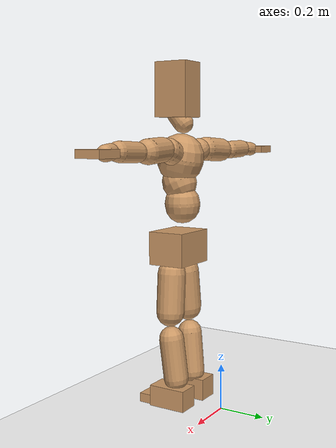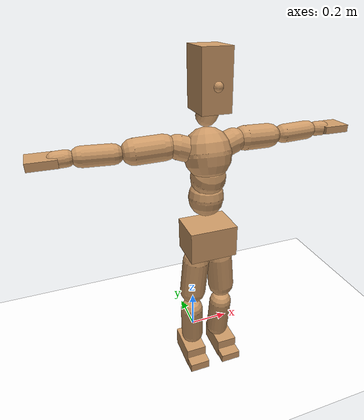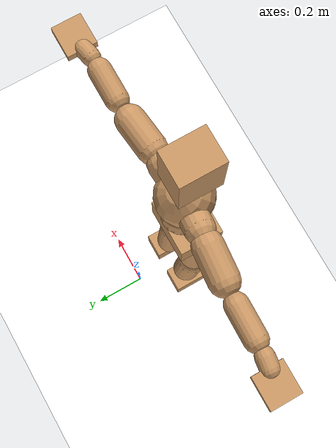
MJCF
<mujoco model="humanoid">
  <option integrator="implicitfast" />

  <visual>
    <global offwidth="1280" offheight="960" />
    <headlight active="1" ambient="0.34 0.34 0.34" diffuse="0.5 0.5 0.5" />
  </visual>

  <default>
    <joint damping="2" stiffness="2" armature="0.01" limited="true" solimplimit="0 .99 .01" />
    <geom condim="1" friction="0.7 0.005 0.0001" solimp=".99 .99 .003" solref="0.015 1" margin="0.001" rgba="0.8 0.6 .4 1" />
    <default class="smplcontact">
      <geom condim="3" friction="1. 0.005 0.0001" solref="0.015 1" solimp="0.98 0.98 0.001" priority="1" />
    </default>
    <default class="stiff_medium">
      <joint stiffness="10" />
    </default>
    <default class="stiff_medium_higher">
      <joint stiffness="50" />
    </default>
    <default class="stiff_high">
      <joint stiffness="100" />
    </default>
  </default>

  <asset>
    <texture type="skybox" builtin="gradient" rgb1="0.99 0.99 0.99" rgb2="0.608 0.828 0.892" width="100" />
    <texture builtin="flat" height="1278" mark="cross" markrgb="1 1 1" name="texgeom" random="0.01" rgb1="0.8 0.6 0.4" rgb2="0.8 0.6 0.4" type="cube" width="127" />
    <texture name="texplane" type="2d" builtin="checker" markrgb="1 1 1" rgb1="0.756 0.772 0.76" rgb2="0.6 0.6 0.6" width="100" height="100" />
    <material name="MatPlane" reflectance="0.5" texture="texplane" texrepeat="1 1" texuniform="true" />
    <material name="geom" texture="texgeom" texuniform="true" />
  </asset>

  <worldbody>
    <light name="tracking_light" pos="0 0 7" dir="0 0 -1" directional="true" cutoff="100" exponent="1" diffuse="1 1 1" specular="0.1 0.1 0.1" mode="trackcom" />
    <camera name="back" pos="0 3 2.4" xyaxes="-1 0 0 0 -1 2" mode="trackcom" />
    <camera name="side" pos="-3 0 2.4" xyaxes="0 -1 0 1 0 2" mode="trackcom" />
    <camera name="front_side" pos="-2.8 -2.8 0.8" xyaxes="0.5 -0.5 0 0.1 0.1 1" mode="trackcom" />
    <geom condim="3" name="floor" pos="0 0 0" rgba="1 1 1 1" size="100 100 .2" type="plane" material="MatPlane" />
    <body name="Pelvis" pos="-0.0018 -0.2233 0.714475" euler="90 0 0">
      <site name="Pelvis" size="0.01" />
      <freejoint name="Pelvis" />
      <geom type="box" pos="-0.0000 -0.0121 -0.0055" size="0.1069 0.0722 0.083" quat="1.0000 0.0000 0.0000 0.0000" density="3165.830099" name="Pelvis" />
      <body name="L_Hip" pos="0.052125 -0.06855 -0.0051">
        <joint name="L_Hip_x" type="hinge" pos="0 0 0" axis="1 0 0" stiffness="6.246094795918367" range="-160.0 22.92" class="stiff_medium" damping="8.291075045961076" armature="0.004891370984683403"/>
        <joint name="L_Hip_y" type="hinge" pos="0 0 0" axis="0 1 0" stiffness="6.283432346938776" range="-70.0 70.0" class="stiff_medium" damping="6.622206330553066" armature="0.006979245460609145"/>
        <joint name="L_Hip_z" type="hinge" pos="0 0 0" axis="0 0 1" stiffness="6.280236020408163" range="-28.65 90.0" class="stiff_medium" damping="5.540637852842338" armature="0.004888139190404853"/>
        <geom type="capsule" density="2040.816327" fromto="0.005175 -0.05625 -0.000675 0.02055 -0.22515 -0.0027" size="0.0615" name="L_Hip" />
        <body name="L_Knee" pos="0.025725 -0.2814 -0.003375">
          <joint name="L_Knee_x" type="hinge" pos="0 0 0" axis="1 0 0" range="-5.16 171.89" damping="4.62915338976834" armature="0.005182973512521489" stiffness="1.292034693877551"/>
          <joint name="L_Knee_y" type="hinge" pos="0 0 0" axis="0 1 0" range="-4.58 6.88" damping="5.469884734588187" armature="0.007381715461698134" stiffness="1.2666279591836735"/>
          <joint name="L_Knee_z" type="hinge" pos="0 0 0" axis="0 0 1" range="-6.88 4.58" damping="4.641672627872137" armature="0.005166231774225991" stiffness="1.3032422448979593"/>
          <geom type="capsule" density="1234.567901" fromto="-0.002025 -0.0597 -0.006525 -0.008175 -0.2388 -0.02625" size="0.0541" name="L_Knee" />
          <body name="L_Ankle" pos="-0.0102 -0.2985 -0.032775">
            <joint name="L_Ankle_x" type="hinge" pos="0 0 0" axis="1 0 0" range="-45.84 45.84" class="stiff_medium" damping="4.385268345779526" armature="0.007122436468331814" stiffness="7.5"/>
            <joint name="L_Ankle_y" type="hinge" pos="0 0 0" axis="0 1 0" range="-74.48 22.92" class="stiff_medium" damping="2.209050591087885" armature="0.007229488168867752" stiffness="7.5"/>
            <joint name="L_Ankle_z" type="hinge" pos="0 0 0" axis="0 0 1" range="-4.58 4.58" class="stiff_medium" damping="4.62729328440739" armature="0.007930312274045085" stiffness="7.5"/>
            <geom type="box" pos="0.017475 -0.017925 0.01815" size="0.0483 0.0464 0.085" quat="1.0000 0.0000 0.0000 0.0000" density="449.071558" name="L_Ankle" class="smplcontact" />
            <body name="L_Toe" pos="0.0198 -0.04185 0.089475">
              <joint name="L_Toe_x" type="hinge" pos="0 0 0" axis="1 0 0" range="-91.67 22.92" armature="0.008336677887503332" damping="1.5814560905225916" stiffness="1.5"/>
              <joint name="L_Toe_y" type="hinge" pos="0 0 0" axis="0 1 0" range="-4.58 4.58" armature="0.008828055290798205" damping="1.6273956455759186" stiffness="1.5"/>
              <joint name="L_Toe_z" type="hinge" pos="0 0 0" axis="0 0 1" range="-4.58 4.58" armature="0.00982159395199221" damping="1.7165308577470035" stiffness="1.5"/>
              <geom type="box" pos="-0.00225 0.004125 0.0186" size="0.0478 0.02 0.0496" quat="1.0000 0.0000 0.0000 0.0000" density="423.206892" name="L_Toe" class="smplcontact" />
            </body>
          </body>
        </body>
      </body>
      <body name="R_Hip" pos="-0.050775 -0.067875 -0.003225">
        <joint name="R_Hip_x" type="hinge" pos="0 0 0" axis="1 0 0" stiffness="6.246094795918367" range="-160.0 22.92" class="stiff_medium" damping="8.291075045961076" armature="0.004891370984683403"/>
        <joint name="R_Hip_y" type="hinge" pos="0 0 0" axis="0 1 0" stiffness="6.283432346938776" range="-70.0 70.0" class="stiff_medium" damping="6.622206330553066" armature="0.006979245460609145"/>
        <joint name="R_Hip_z" type="hinge" pos="0 0 0" axis="0 0 1" stiffness="6.280236020408163" range="-90.0 28.65" class="stiff_medium" damping="5.540637852842338" armature="0.004888139190404853"/>
        <geom type="capsule" density="2040.816327" fromto="-0.005775 -0.057375 -0.00135 -0.02295 -0.229575 -0.005325" size="0.0606" name="R_Hip" />
        <body name="R_Knee" pos="-0.028725 -0.28695 -0.006675">
          <joint name="R_Knee_x" type="hinge" pos="0 0 0" axis="1 0 0" range="-5.16 171.89" damping="4.62915338976834" armature="0.005182973512521489" stiffness="1.292034693877551"/>
          <joint name="R_Knee_y" type="hinge" pos="0 0 0" axis="0 1 0" range="-6.88 4.58" damping="5.469884734588187" armature="0.007381715461698134" stiffness="1.2666279591836735"/>
          <joint name="R_Knee_z" type="hinge" pos="0 0 0" axis="0 0 1" range="-4.58 6.88" damping="4.641672627872137" armature="0.005166231774225991" stiffness="1.3032422448979593"/>
          <geom type="capsule" density="1234.567901" fromto="0.0024 -0.059775 -0.006375 0.00945 -0.239025 -0.02535" size="0.0541" name="R_Knee" />
          <body name="R_Ankle" pos="0.01185 -0.2988 -0.031725">
            <joint name="R_Ankle_x" type="hinge" pos="0 0 0" axis="1 0 0" range="-45.84 45.84" class="stiff_medium" damping="4.385268345779526" armature="0.007122436468331814" stiffness="7.5"/>
            <joint name="R_Ankle_y" type="hinge" pos="0 0 0" axis="0 1 0" range="-22.92 74.48" class="stiff_medium" damping="2.209050591087885" armature="0.007229488168867752" stiffness="7.5"/>
            <joint name="R_Ankle_z" type="hinge" pos="0 0 0" axis="0 0 1" range="-4.58 4.58" class="stiff_medium" damping="4.62729328440739" armature="0.007930312274045085" stiffness="7.5"/>
            <geom type="box" pos="-0.0159 -0.01305 0.0192" size="0.0483 0.0478 0.0865" quat="1.0000 0.0000 0.0000 0.0000" density="434.700981" name="R_Ankle" class="smplcontact" />
            <body name="R_Toe" pos="-0.01905 -0.036075 0.092475">
              <joint name="R_Toe_x" type="hinge" pos="0 0 0" axis="1 0 0" range="-91.67 22.92" armature="0.008336677887503332" damping="1.5814560905225916" stiffness="1.5"/>
              <joint name="R_Toe_y" type="hinge" pos="0 0 0" axis="0 1 0" range="-4.58 4.58" armature="0.008828055290798205" damping="1.6273956455759186" stiffness="1.5"/>
              <joint name="R_Toe_z" type="hinge" pos="0 0 0" axis="0 0 1" range="-4.58 4.58" armature="0.00982159395199221" damping="1.7165308577470035" stiffness="1.5"/>
              <geom type="box" pos="0.00315 0.003375 0.017025" size="0.0479 0.0216 0.0493" quat="1.0000 0.0000 0.0000 0.0000" density="407.384095" name="R_Toe" class="smplcontact" />
            </body>
          </body>
        </body>
      </body>
      <body name="Torso" pos="-0.0025 0.109 -0.0267">
        <joint name="Torso_x" type="hinge" pos="0 0 0" axis="1 0 0" range="-25.78 57.3" class="stiff_medium" damping="13.810652204593472" armature="0.009092501018959226" stiffness="9.323146326530612"/>
        <joint name="Torso_y" type="hinge" pos="0 0 0" axis="0 1 0" range="-57.3 57.3" class="stiff_high" damping="14.331171543099826" armature="0.005453647751768046" stiffness="94.1491306122449"/>
        <joint name="Torso_z" type="hinge" pos="0 0 0" axis="0 0 1" range="-34.38 34.38" class="stiff_high" damping="17.298336416757877" armature="0.007846444358372213" stiffness="95.34014042553191"/>
        <geom type="capsule" density="2040.816327" fromto="0.0025 0.0608 0.0005 0.003 0.0743 0.0006" size="0.0769" name="Torso" />
        <body name="Spine" pos="0.0055 0.1352 0.0011">
          <joint name="Spine_x" type="hinge" pos="0 0 0" axis="1 0 0" stiffness="9.198122653061224" range="-25.78 57.3" class="stiff_medium" damping="13.625447932409392" armature="0.008970566343267754"/>
          <joint name="Spine_y" type="hinge" pos="0 0 0" axis="0 1 0" stiffness="9.181372040816328" range="-57.3 57.3" class="stiff_high" damping="5.644321396937274" armature="0.005421705337566875"/>
          <joint name="Spine_z" type="hinge" pos="0 0 0" axis="0 0 1" stiffness="18.1392375" range="-34.38 34.38" class="stiff_high" damping="9.55999432042161" armature="0.006997835754189828"/>
          <geom type="capsule" density="2040.816327" fromto="0.0007 0.0238 0.0114 0.0008 0.0291 0.014" size="0.0755" name="Spine" />
          <body name="Chest" pos="0.0015 0.0529 0.0254">
            <joint name="Chest_x" type="hinge" pos="0 0 0" axis="1 0 0" stiffness="8.90027425531915" range="-25.78 57.3" class="stiff_medium" damping="13.35613299120066" armature="0.008907904701027891"/>
            <joint name="Chest_y" type="hinge" pos="0 0 0" axis="0 1 0" stiffness="8.011889047619047" range="-57.3 57.3" class="stiff_high" damping="5.266225064762502" armature="0.005408588385784329"/>
            <joint name="Chest_z" type="hinge" pos="0 0 0" axis="0 0 1" stiffness="18.1318547826087" range="-34.38 34.38" class="stiff_high" damping="9.302458057933912" armature="0.006628583212401057"/>
            <geom type="capsule" density="2040.816327" fromto="-0.0009 0.0682 -0.0173 -0.001 0.0833 -0.0212" size="0.1002" name="Chest" />
            <body name="Neck" pos="-0.0028 0.2139 -0.0429">
              <joint name="Neck_x" type="hinge" pos="0 0 0" axis="1 0 0" range="-28.65 57.3" class="stiff_medium_higher" damping="10.000000000000004" armature="0.01000000000000001" stiffness="50.0"/>
              <joint name="Neck_y" type="hinge" pos="0 0 0" axis="0 1 0" range="-40.11 40.11" class="stiff_medium_higher" damping="10.0" armature="0.010000000000000002" stiffness="50.0"/>
              <joint name="Neck_z" type="hinge" pos="0 0 0" axis="0 0 1" range="-40.11 40.11" class="stiff_medium_higher" damping="9.999999999999998" armature="0.009999999999999995" stiffness="50.0"/>
              <geom type="capsule" density="1000" fromto="0.001 0.013 0.0103 0.0041 0.052 0.0411" size="0.0436" name="Neck" />
              <body name="Head" pos="0.0052 0.065 0.0513">
                <joint name="Head_x" type="hinge" pos="0 0 0" axis="1 0 0" range="-28.65 57.3" class="stiff_medium_higher" damping="1.9999999999999978" armature="0.009999999999999978" stiffness="50.0"/>
                <joint name="Head_y" type="hinge" pos="0 0 0" axis="0 1 0" range="-40.11 40.11" class="stiff_medium_higher" damping="2.0" armature="0.010000000000000002" stiffness="50.0"/>
                <joint name="Head_z" type="hinge" pos="0 0 0" axis="0 0 1" range="-40.11 40.11" class="stiff_medium_higher" damping="1.9999999999999958" armature="0.009999999999999959" stiffness="50.0"/>
                <geom type="box" pos="-0.0042 0.0876 -0.0116" size="0.0606 0.1154 0.076" quat="1.0000 0.0000 0.0000 0.0000" density="1018.069894" name="Head" />
                <geom type="capsule" name="nose" size="0.02 0.01" pos="0 0.07 0.05" quat="1 0 0 0" mass="0" contype="0" conaffinity="0" />
              </body>
            </body>
            <body name="L_Thorax" pos="0.06107 0.0943175 -0.0264275">
              <joint name="L_Thorax_x" type="hinge" pos="0 0 0" axis="1 0 0" range="-10.89 4.58" class="stiff_medium_higher" damping="13.43087791250666" armature="0.006743873105350322" stiffness="33.43562346938776"/>
              <joint name="L_Thorax_y" type="hinge" pos="0 0 0" axis="0 1 0" range="-28.65 17.19" class="stiff_medium_higher" damping="11.843958709758661" armature="0.005279455483598095" stiffness="33.21350051020408"/>
              <joint name="L_Thorax_z" type="hinge" pos="0 0 0" axis="0 0 1" range="-31.51 40.11" class="stiff_medium_higher" damping="11.84290484733603" armature="0.005278125365951002" stiffness="33.215958673469395"/>
              <geom type="capsule" density="1000" fromto="0.014105 0.0047275 -0.001395 0.05642 0.01891 -0.0055025" size="0.0521" name="L_Thorax" />
              <body name="L_Shoulder" pos="0.070525 0.0236375 -0.0068975">
                <joint name="L_Shoulder_x" type="hinge" pos="0 0 0" axis="1 0 0" range="-97.4 97.4" class="stiff_medium" damping="4.200573869623511" armature="0.007293874713182502" stiffness="6.719801632653062"/>
                <joint name="L_Shoulder_y" type="hinge" pos="0 0 0" axis="0 1 0" range="-108.86 80.21" class="stiff_medium" damping="3.5719924695592944" armature="0.005322246430600954" stiffness="6.659223469387755"/>
                <joint name="L_Shoulder_z" type="hinge" pos="0 0 0" axis="0 0 1" range="-97.4 85.94" class="stiff_medium" damping="3.5723414695273763" armature="0.0053204314495063935" stiffness="6.662796938775511"/>
                <geom type="capsule" density="1000" fromto="0.0402225 -0.002015 -0.0042625 0.160968 -0.007905 -0.01705" size="0.0517" name="L_Shoulder" />
                <body name="L_Elbow" pos="0.20119 -0.00992 -0.0213125">
                  <joint name="L_Elbow_x" type="hinge" pos="0 0 0" axis="1 0 0" range="-17.19 4.58" damping="3.751209439001512" armature="0.00822171344580518" stiffness="1.3692106734693876"/>
                  <joint name="L_Elbow_y" type="hinge" pos="0 0 0" axis="0 1 0" range="-180.0 17.19" damping="3.0766314110203536" armature="0.005532912421377136" stiffness="1.368633387755102"/>
                  <joint name="L_Elbow_z" type="hinge" pos="0 0 0" axis="0 0 1" range="-100.84 4.58" damping="3.0750834512185694" armature="0.005523383254833449" stiffness="1.3696153673469391"/>
                  <geom type="capsule" density="1000" fromto="0.038595 0.001395 -0.000155 0.154535 0.00558 -0.0006975" size="0.0405" name="L_Elbow" />
                  <body name="L_Wrist" pos="0.19313 0.006975 -0.00093">
                    <joint name="L_Wrist_x" type="hinge" pos="0 0 0" axis="1 0 0" range="-180.0 22.92" armature="0.008602907880090325" damping="1.5994571311849208" stiffness="1.486859530612245"/>
                    <joint name="L_Wrist_y" type="hinge" pos="0 0 0" axis="0 1 0" range="-17.19 17.19" armature="0.006335437662014364" damping="1.3682982903238867" stiffness="1.4775934285714285"/>
                    <joint name="L_Wrist_z" type="hinge" pos="0 0 0" axis="0 0 1" range="-22.92 22.92" armature="0.006206199430184646" damping="1.355981958198603" stiffness="1.4813309591836734"/>
                    <geom type="capsule" density="1000" fromto="0.01302 -0.00124 -0.002325 0.05208 -0.0050375 -0.0093" size="0.0318" name="L_Wrist" class="smplcontact" />
                    <body name="L_Hand" pos="0.0651 -0.006355 -0.0115475">
                      <joint name="L_Hand_x" type="hinge" pos="0 0 0" axis="1 0 0" range="-17.19 17.19" armature="0.009826007646420904" damping="1.74529721548809" stiffness="1.55"/>
                      <joint name="L_Hand_y" type="hinge" pos="0 0 0" axis="0 1 0" range="-51.57 51.57" armature="0.007895802531703768" damping="1.5645123153328542" stiffness="1.55"/>
                      <joint name="L_Hand_z" type="hinge" pos="0 0 0" axis="0 0 1" range="-91.67 91.67" armature="0.007381279985826257" damping="1.5126786822078706" stiffness="1.55"/>
                      <geom type="box" pos="0.0382075 0.000775 -0.004495" size="0.0585 0.0158 0.0538" quat="1.0000 0.0000 0.0000 0.0000" density="400.552564" name="L_Hand" class="smplcontact" />
                    </body>
                  </body>
                </body>
              </body>
            </body>
            <body name="R_Thorax" pos="-0.063395 0.09207 -0.029915">
              <joint name="R_Thorax_x" type="hinge" pos="0 0 0" axis="1 0 0" range="-10.89 4.58" class="stiff_medium_higher" damping="13.43087791250666" armature="0.006743873105350322" stiffness="33.43562346938776"/>
              <joint name="R_Thorax_y" type="hinge" pos="0 0 0" axis="0 1 0" range="-17.19 28.65" class="stiff_medium_higher" damping="11.843958709758661" armature="0.005279455483598095" stiffness="33.21350051020408"/>
              <joint name="R_Thorax_z" type="hinge" pos="0 0 0" axis="0 0 1" range="-40.11 31.51" class="stiff_medium_higher" damping="11.84290484733603" armature="0.005278125365951002" stiffness="33.215958673469395"/>
              <geom type="capsule" density="1000" fromto="-0.01488 0.0050375 -0.001395 -0.05952 0.02015 -0.0056575" size="0.0511" name="R_Thorax" />
              <body name="R_Shoulder" pos="-0.0744 0.025265 -0.0070525">
                <joint name="R_Shoulder_x" type="hinge" pos="0 0 0" axis="1 0 0" range="-97.4 97.4" class="stiff_medium" damping="4.200573869623511" armature="0.007293874713182502" stiffness="6.719801632653062"/>
                <joint name="R_Shoulder_y" type="hinge" pos="0 0 0" axis="0 1 0" range="-80.21 108.86" class="stiff_medium" damping="3.5719924695592944" armature="0.005322246430600954" stiffness="6.659223469387755"/>
                <joint name="R_Shoulder_z" type="hinge" pos="0 0 0" axis="0 0 1" range="-85.94 97.4" class="stiff_medium" damping="3.5723414695273763" armature="0.0053204314495063935" stiffness="6.662796938775511"/>
                <geom type="capsule" density="1000" fromto="-0.0392925 -0.0020925 -0.0033325 -0.157325 -0.0082925 -0.0132525" size="0.0531" name="R_Shoulder" />
                <body name="R_Elbow" pos="-0.196618 -0.0103075 -0.016585">
                  <joint name="R_Elbow_x" type="hinge" pos="0 0 0" axis="1 0 0" range="-17.19 4.58" damping="3.751209439001512" armature="0.00822171344580518" stiffness="1.3692106734693876"/>
                  <joint name="R_Elbow_y" type="hinge" pos="0 0 0" axis="0 1 0" range="-17.19 180.0" damping="3.0766314110203536" armature="0.005532912421377136" stiffness="1.368633387755102"/>
                  <joint name="R_Elbow_z" type="hinge" pos="0 0 0" axis="0 0 1" range="-4.58 100.84" damping="3.0750834512185694" armature="0.005523383254833449" stiffness="1.3696153673469391"/>
                  <geom type="capsule" density="1000" fromto="-0.0396025 0.00124 -0.0008525 -0.158255 0.004805 -0.00341" size="0.0408" name="R_Elbow" />
                  <body name="R_Wrist" pos="-0.197858 0.006045 -0.00434">
                    <joint name="R_Wrist_x" type="hinge" pos="0 0 0" axis="1 0 0" range="-180.0 22.92" armature="0.008602907880090325" damping="1.5994571311849208" stiffness="1.486859530612245"/>
                    <joint name="R_Wrist_y" type="hinge" pos="0 0 0" axis="0 1 0" range="-17.19 17.19" armature="0.006335437662014364" damping="1.3682982903238867" stiffness="1.4775934285714285"/>
                    <joint name="R_Wrist_z" type="hinge" pos="0 0 0" axis="0 0 1" range="-22.92 22.92" armature="0.006206199430184646" damping="1.355981958198603" stiffness="1.4813309591836734"/>
                    <geom type="capsule" density="1000" fromto="-0.0130975 -0.00093 -0.0016275 -0.0524675 -0.0037975 -0.0064325" size="0.0326" name="R_Wrist" class="smplcontact" />
                    <body name="R_Hand" pos="-0.065565 -0.0047275 -0.0079825">
                      <joint name="R_Hand_x" type="hinge" pos="0 0 0" axis="1 0 0" range="-17.19 17.19" armature="0.009826007646420904" damping="1.74529721548809" stiffness="1.55"/>
                      <joint name="R_Hand_y" type="hinge" pos="0 0 0" axis="0 1 0" range="-51.57 51.57" armature="0.007895802531703768" damping="1.5645123153328542" stiffness="1.55"/>
                      <joint name="R_Hand_z" type="hinge" pos="0 0 0" axis="0 0 1" range="-91.67 91.67" armature="0.007381279985826257" damping="1.5126786822078706" stiffness="1.55"/>
                      <geom type="box" pos="-0.035805 -0.0006975 -0.0061225" size="0.0569 0.0164 0.0546" quat="1.0000 0.0000 0.0000 0.0000" density="403.679611" name="R_Hand" class="smplcontact" />
                    </body>
                  </body>
                </body>
              </body>
            </body>
          </body>
        </body>
      </body>
    </body>
  </worldbody>
  <actuator>
    <general name="L_Hip_x" joint="L_Hip_x" biastype="affine" gainprm="179.46908180691764" biasprm="-134.4938865848036 -112.42970632653059 -1.1054766727948102" ctrllimited="true" ctrlrange="-1 1" forcerange="-224.85941265306118 224.85941265306118" />
    <general name="L_Hip_y" joint="L_Hip_y" biastype="affine" gainprm="138.1798943032993" biasprm="0.0 -113.10178224489796 -1.3244412661106133" ctrllimited="true" ctrlrange="-1 1" forcerange="-226.20356448979592 226.20356448979592" />
    <general name="L_Hip_z" joint="L_Hip_z" biastype="affine" gainprm="117.04788889139031" biasprm="60.52160120932823 -113.04424836734694 -1.1081275705684677" ctrllimited="true" ctrlrange="-1 1" forcerange="-226.08849673469388 226.08849673469388" />
    <general name="L_Knee_x" joint="L_Knee_x" biastype="affine" gainprm="179.66355466802756" biasprm="169.1912141756579 -116.2831224489796 -1.157288347442085" ctrllimited="true" ctrlrange="-1 1" forcerange="-232.5662448979592 232.5662448979592" />
    <general name="L_Knee_y" joint="L_Knee_y" biastype="affine" gainprm="11.400491346869197" biasprm="2.2880567275566452 -113.99651632653062 -1.3674711836470468" ctrllimited="true" ctrlrange="-1 1" forcerange="-227.99303265306125 227.99303265306125" />
    <general name="L_Knee_z" joint="L_Knee_z" biastype="affine" gainprm="11.730044191831292" biasprm="-2.3541973508910967 -117.29180204081634 -1.1604181569680343" ctrllimited="true" ctrlrange="-1 1" forcerange="-234.58360408163267 234.58360408163267" />
    <general name="L_Ankle_x" joint="L_Ankle_x" biastype="affine" gainprm="54.00397771520855" biasprm="0.0 -67.5 -1.461756115259842" ctrllimited="true" ctrlrange="-1 1" forcerange="-135.0 135.0" />
    <general name="L_Ankle_y" joint="L_Ankle_y" biastype="affine" gainprm="57.37333583618361" biasprm="-30.371346978579332 -67.5 -1.4727003940585899" ctrllimited="true" ctrlrange="-1 1" forcerange="-135.0 135.0" />
    <general name="L_Ankle_z" joint="L_Ankle_z" biastype="affine" gainprm="5.395685382540469" biasprm="0.0 -67.5 -1.5424310948024633" ctrllimited="true" ctrlrange="-1 1" forcerange="-135.0 135.0" />
    <general name="L_Toe_x" joint="L_Toe_x" biastype="affine" gainprm="53.999265326228155" biasprm="-32.39767424014474 -54.0 -0.6325824362090366" ctrllimited="true" ctrlrange="-1 1" forcerange="-108.0 108.0" />
    <general name="L_Toe_y" joint="L_Toe_y" biastype="affine" gainprm="4.3165483060323755" biasprm="0.0 -54.0 -0.6509582582303675" ctrllimited="true" ctrlrange="-1 1" forcerange="-108.0 108.0" />
    <general name="L_Toe_z" joint="L_Toe_z" biastype="affine" gainprm="4.3165483060323755" biasprm="0.0 -54.0 -0.6866123430988015" ctrllimited="true" ctrlrange="-1 1" forcerange="-108.0 108.0" />
    <general name="R_Hip_x" joint="R_Hip_x" biastype="affine" gainprm="179.46908180691764" biasprm="-134.4938865848036 -112.42970632653059 -1.1054766727948102" ctrllimited="true" ctrlrange="-1 1" forcerange="-224.85941265306118 224.85941265306118" />
    <general name="R_Hip_y" joint="R_Hip_y" biastype="affine" gainprm="138.1798943032993" biasprm="0.0 -113.10178224489796 -1.3244412661106133" ctrllimited="true" ctrlrange="-1 1" forcerange="-226.20356448979592 226.20356448979592" />
    <general name="R_Hip_z" joint="R_Hip_z" biastype="affine" gainprm="117.04788889139031" biasprm="-60.52160120932823 -113.04424836734694 -1.1081275705684677" ctrllimited="true" ctrlrange="-1 1" forcerange="-226.08849673469388 226.08849673469388" />
    <general name="R_Knee_x" joint="R_Knee_x" biastype="affine" gainprm="179.66355466802756" biasprm="169.1912141756579 -116.2831224489796 -1.157288347442085" ctrllimited="true" ctrlrange="-1 1" forcerange="-232.5662448979592 232.5662448979592" />
    <general name="R_Knee_y" joint="R_Knee_y" biastype="affine" gainprm="11.400491346869197" biasprm="-2.2880567275566452 -113.99651632653062 -1.3674711836470468" ctrllimited="true" ctrlrange="-1 1" forcerange="-227.99303265306125 227.99303265306125" />
    <general name="R_Knee_z" joint="R_Knee_z" biastype="affine" gainprm="11.730044191831292" biasprm="2.3541973508910967 -117.29180204081634 -1.1604181569680343" ctrllimited="true" ctrlrange="-1 1" forcerange="-234.58360408163267 234.58360408163267" />
    <general name="R_Ankle_x" joint="R_Ankle_x" biastype="affine" gainprm="54.00397771520855" biasprm="0.0 -67.5 -1.461756115259842" ctrllimited="true" ctrlrange="-1 1" forcerange="-135.0 135.0" />
    <general name="R_Ankle_y" joint="R_Ankle_y" biastype="affine" gainprm="57.37333583618361" biasprm="30.371346978579332 -67.5 -1.4727003940585899" ctrllimited="true" ctrlrange="-1 1" forcerange="-135.0 135.0" />
    <general name="R_Ankle_z" joint="R_Ankle_z" biastype="affine" gainprm="5.395685382540469" biasprm="0.0 -67.5 -1.5424310948024633" ctrllimited="true" ctrlrange="-1 1" forcerange="-135.0 135.0" />
    <general name="R_Toe_x" joint="R_Toe_x" biastype="affine" gainprm="53.999265326228155" biasprm="-32.39767424014474 -54.0 -0.6325824362090366" ctrllimited="true" ctrlrange="-1 1" forcerange="-108.0 108.0" />
    <general name="R_Toe_y" joint="R_Toe_y" biastype="affine" gainprm="4.3165483060323755" biasprm="0.0 -54.0 -0.6509582582303675" ctrllimited="true" ctrlrange="-1 1" forcerange="-108.0 108.0" />
    <general name="R_Toe_z" joint="R_Toe_z" biastype="affine" gainprm="4.3165483060323755" biasprm="0.0 -54.0 -0.6866123430988015" ctrllimited="true" ctrlrange="-1 1" forcerange="-108.0 108.0" />
    <general name="Torso_x" joint="Torso_x" biastype="affine" gainprm="162.2249324590423" biasprm="61.54706152032995 -223.7555118367347 -3.6828405878915924" ctrllimited="true" ctrlrange="-1 1" forcerange="-335.63326775510205 335.63326775510205" />
    <general name="Torso_y" joint="Torso_y" biastype="affine" gainprm="225.974557843997" biasprm="0.0 -225.95791346938776 -2.866234308619965" ctrllimited="true" ctrlrange="-1 1" forcerange="-338.93687020408163 338.93687020408163" />
    <general name="Torso_z" joint="Torso_z" biastype="affine" gainprm="137.29991517080745" biasprm="0.0 -228.8163370212766 -3.4596672833515756" ctrllimited="true" ctrlrange="-1 1" forcerange="-343.2245055319149 343.2245055319149" />
    <general name="Spine_x" joint="Spine_x" biastype="affine" gainprm="160.04949122128795" biasprm="60.721713568789056 -220.7549436734694 -3.633452781975838" ctrllimited="true" ctrlrange="-1 1" forcerange="-331.1324155102041 331.1324155102041" />
    <general name="Spine_y" joint="Spine_y" biastype="affine" gainprm="220.36916048323718" biasprm="0.0 -220.35292897959184 -2.822160698468637" ctrllimited="true" ctrlrange="-1 1" forcerange="-330.52939346938774 330.52939346938774" />
    <general name="Spine_z" joint="Spine_z" biastype="affine" gainprm="130.61213036278338" biasprm="0.0 -217.67085 -3.1866647734738702" ctrllimited="true" ctrlrange="-1 1" forcerange="-326.506275 326.506275" />
    <general name="Chest_x" joint="Chest_x" biastype="affine" gainprm="154.86685925194476" biasprm="58.7554574340551 -213.6065821276596 -3.561635464320176" ctrllimited="true" ctrlrange="-1 1" forcerange="-320.4098731914894 320.4098731914894" />
    <general name="Chest_y" joint="Chest_y" biastype="affine" gainprm="192.29950114859662" biasprm="0.0 -192.28533714285712 -2.633112532381251" ctrllimited="true" ctrlrange="-1 1" forcerange="-288.4280057142857 288.4280057142857" />
    <general name="Chest_z" joint="Chest_z" biastype="affine" gainprm="130.55897088205305" biasprm="0.0 -217.58225739130438 -3.100819352644637" ctrllimited="true" ctrlrange="-1 1" forcerange="-326.37338608695654 326.37338608695654" />
    <general name="Neck_x" joint="Neck_x" biastype="affine" gainprm="27.00198885760427" biasprm="9.000662952534757 -36.0 -0.8000000000000004" ctrllimited="true" ctrlrange="-1 1" forcerange="-72.0 72.0" />
    <general name="Neck_y" joint="Neck_y" biastype="affine" gainprm="25.20185626709732" biasprm="0.0 -36.0 -0.8" ctrllimited="true" ctrlrange="-1 1" forcerange="-72.0 72.0" />
    <general name="Neck_z" joint="Neck_z" biastype="affine" gainprm="25.20185626709732" biasprm="0.0 -36.0 -0.7999999999999998" ctrllimited="true" ctrlrange="-1 1" forcerange="-72.0 72.0" />
    <general name="Head_x" joint="Head_x" biastype="affine" gainprm="18.001325905069514" biasprm="6.000441968356505 -24.0 -0.7999999999999992" ctrllimited="true" ctrlrange="-1 1" forcerange="-48.0 48.0" />
    <general name="Head_y" joint="Head_y" biastype="affine" gainprm="16.801237511398213" biasprm="0.0 -24.0 -0.8" ctrllimited="true" ctrlrange="-1 1" forcerange="-48.0 48.0" />
    <general name="Head_z" joint="Head_z" biastype="affine" gainprm="16.801237511398213" biasprm="0.0 -24.0 -0.7999999999999984" ctrllimited="true" ctrlrange="-1 1" forcerange="-48.0 48.0" />
    <general name="L_Thorax_x" joint="L_Thorax_x" biastype="affine" gainprm="10.833239714349121" biasprm="-4.4187293211081435 -80.24549632653061 -1.074470233000533" ctrllimited="true" ctrlrange="-1 1" forcerange="-160.49099265306123 160.49099265306123" />
    <general name="L_Thorax_y" joint="L_Thorax_y" biastype="affine" gainprm="31.887309180393395" biasprm="-7.971827295098349 -79.71240122448978 -0.947516696780693" ctrllimited="true" ctrlrange="-1 1" forcerange="-159.42480244897956 159.42480244897956" />
    <general name="L_Thorax_z" joint="L_Thorax_z" biastype="affine" gainprm="49.8241297438119" biasprm="5.98279134036278 -79.71830081632655 -0.9474323877868823" ctrllimited="true" ctrlrange="-1 1" forcerange="-159.4366016326531 159.4366016326531" />
    <general name="L_Shoulder_x" joint="L_Shoulder_x" biastype="affine" gainprm="54.831990872567324" biasprm="0.0 -32.2550478367347 -1.120153031899603" ctrllimited="true" ctrlrange="-1 1" forcerange="-64.5100956734694 64.5100956734694" />
    <general name="L_Shoulder_y" joint="L_Shoulder_y" biastype="affine" gainprm="52.739356038732126" biasprm="-7.9916567964757785 -31.964272653061222 -0.952531325215812" ctrllimited="true" ctrlrange="-1 1" forcerange="-63.928545306122444 63.928545306122444" />
    <general name="L_Shoulder_z" joint="L_Shoulder_z" biastype="affine" gainprm="51.16846795221352" biasprm="-3.1983781102452724 -31.98142530612245 -0.9526243918739671" ctrllimited="true" ctrlrange="-1 1" forcerange="-63.9628506122449 63.9628506122449" />
    <general name="L_Elbow_x" joint="L_Elbow_x" biastype="affine" gainprm="9.364370274135227" biasprm="-5.424194265358073 -49.291584244897955 -0.6001935102402419" ctrllimited="true" ctrlrange="-1 1" forcerange="-98.58316848979591 98.58316848979591" />
    <general name="L_Elbow_y" joint="L_Elbow_y" biastype="affine" gainprm="84.78555943298619" biasprm="-70.00323003846282 -49.27080195918367 -0.4922610257632566" ctrllimited="true" ctrlrange="-1 1" forcerange="-98.54160391836734 98.54160391836734" />
    <general name="L_Elbow_z" joint="L_Elbow_z" biastype="affine" gainprm="45.359839041363344" biasprm="-41.41849844547179 -49.306153224489805 -0.4920133521949711" ctrllimited="true" ctrlrange="-1 1" forcerange="-98.61230644897961 98.61230644897961" />
    <general name="L_Wrist_x" joint="L_Wrist_x" biastype="affine" gainprm="15.797683800581504" biasprm="-12.228958069166877 -8.92115718367347 -0.6397828524739684" ctrllimited="true" ctrlrange="-1 1" forcerange="-17.84231436734694 17.84231436734694" />
    <general name="L_Wrist_y" joint="L_Wrist_y" biastype="affine" gainprm="2.659864086290334" biasprm="0.0 -8.86556057142857 -0.5473193161295548" ctrllimited="true" ctrlrange="-1 1" forcerange="-17.73112114285714 17.73112114285714" />
    <general name="L_Wrist_z" joint="L_Wrist_z" biastype="affine" gainprm="3.5554561826046047" biasprm="0.0 -8.88798575510204 -0.5423927832794412" ctrllimited="true" ctrlrange="-1 1" forcerange="-17.77597151020408 17.77597151020408" />
    <general name="L_Hand_x" joint="L_Hand_x" biastype="affine" gainprm="2.7902055152857757" biasprm="0.0 -9.3 -0.698118886195236" ctrllimited="true" ctrlrange="-1 1" forcerange="-18.6 18.6" />
    <general name="L_Hand_y" joint="L_Hand_y" biastype="affine" gainprm="8.370616545857324" biasprm="0.0 -9.3 -0.6258049261331418" ctrllimited="true" ctrlrange="-1 1" forcerange="-18.6 18.6" />
    <general name="L_Hand_z" joint="L_Hand_z" biastype="affine" gainprm="14.879472925319778" biasprm="0.0 -9.3 -0.6050714728831483" ctrllimited="true" ctrlrange="-1 1" forcerange="-18.6 18.6" />
    <general name="R_Thorax_x" joint="R_Thorax_x" biastype="affine" gainprm="10.833239714349121" biasprm="-4.4187293211081435 -80.24549632653061 -1.074470233000533" ctrllimited="true" ctrlrange="-1 1" forcerange="-160.49099265306123 160.49099265306123" />
    <general name="R_Thorax_y" joint="R_Thorax_y" biastype="affine" gainprm="31.887309180393395" biasprm="7.971827295098343 -79.71240122448978 -0.947516696780693" ctrllimited="true" ctrlrange="-1 1" forcerange="-159.42480244897956 159.42480244897956" />
    <general name="R_Thorax_z" joint="R_Thorax_z" biastype="affine" gainprm="49.8241297438119" biasprm="-5.98279134036278 -79.71830081632655 -0.9474323877868823" ctrllimited="true" ctrlrange="-1 1" forcerange="-159.4366016326531 159.4366016326531" />
    <general name="R_Shoulder_x" joint="R_Shoulder_x" biastype="affine" gainprm="54.831990872567324" biasprm="0.0 -32.2550478367347 -1.120153031899603" ctrllimited="true" ctrlrange="-1 1" forcerange="-64.5100956734694 64.5100956734694" />
    <general name="R_Shoulder_y" joint="R_Shoulder_y" biastype="affine" gainprm="52.739356038732126" biasprm="7.9916567964757785 -31.964272653061222 -0.952531325215812" ctrllimited="true" ctrlrange="-1 1" forcerange="-63.928545306122444 63.928545306122444" />
    <general name="R_Shoulder_z" joint="R_Shoulder_z" biastype="affine" gainprm="51.16846795221352" biasprm="3.1983781102452653 -31.98142530612245 -0.9526243918739671" ctrllimited="true" ctrlrange="-1 1" forcerange="-63.9628506122449 63.9628506122449" />
    <general name="R_Elbow_x" joint="R_Elbow_x" biastype="affine" gainprm="9.364370274135227" biasprm="-5.424194265358073 -49.291584244897955 -0.6001935102402419" ctrllimited="true" ctrlrange="-1 1" forcerange="-98.58316848979591 98.58316848979591" />
    <general name="R_Elbow_y" joint="R_Elbow_y" biastype="affine" gainprm="84.78555943298619" biasprm="70.00323003846282 -49.27080195918367 -0.4922610257632566" ctrllimited="true" ctrlrange="-1 1" forcerange="-98.54160391836734 98.54160391836734" />
    <general name="R_Elbow_z" joint="R_Elbow_z" biastype="affine" gainprm="45.359839041363344" biasprm="41.41849844547178 -49.306153224489805 -0.4920133521949711" ctrllimited="true" ctrlrange="-1 1" forcerange="-98.61230644897961 98.61230644897961" />
    <general name="R_Wrist_x" joint="R_Wrist_x" biastype="affine" gainprm="15.797683800581504" biasprm="-12.228958069166877 -8.92115718367347 -0.6397828524739684" ctrllimited="true" ctrlrange="-1 1" forcerange="-17.84231436734694 17.84231436734694" />
    <general name="R_Wrist_y" joint="R_Wrist_y" biastype="affine" gainprm="2.659864086290334" biasprm="0.0 -8.86556057142857 -0.5473193161295548" ctrllimited="true" ctrlrange="-1 1" forcerange="-17.73112114285714 17.73112114285714" />
    <general name="R_Wrist_z" joint="R_Wrist_z" biastype="affine" gainprm="3.5554561826046047" biasprm="0.0 -8.88798575510204 -0.5423927832794412" ctrllimited="true" ctrlrange="-1 1" forcerange="-17.77597151020408 17.77597151020408" />
    <general name="R_Hand_x" joint="R_Hand_x" biastype="affine" gainprm="2.7902055152857757" biasprm="0.0 -9.3 -0.698118886195236" ctrllimited="true" ctrlrange="-1 1" forcerange="-18.6 18.6" />
    <general name="R_Hand_y" joint="R_Hand_y" biastype="affine" gainprm="8.370616545857324" biasprm="0.0 -9.3 -0.6258049261331418" ctrllimited="true" ctrlrange="-1 1" forcerange="-18.6 18.6" />
    <general name="R_Hand_z" joint="R_Hand_z" biastype="affine" gainprm="14.879472925319778" biasprm="0.0 -9.3 -0.6050714728831483" ctrllimited="true" ctrlrange="-1 1" forcerange="-18.6 18.6" />
  </actuator>
  <contact>
    <exclude body1="Torso" body2="Chest" />
    <exclude body1="Head" body2="Chest" />
    <exclude body1="R_Knee" body2="R_Toe" />
    <exclude body1="R_Knee" body2="L_Ankle" />
    <exclude body1="R_Knee" body2="L_Toe" />
    <exclude body1="L_Knee" body2="L_Toe" />
    <exclude body1="L_Knee" body2="R_Ankle" />
    <exclude body1="L_Knee" body2="R_Toe" />
    <exclude body1="L_Shoulder" body2="Chest" />
    <exclude body1="R_Shoulder" body2="Chest" />
  </contact>
  <sensor>
    <framelinvel name="sensor_Pelvis_framelinvel" objtype="xbody" objname="Pelvis" />
    <framelinvel name="sensor_L_Hip_framelinvel" objtype="xbody" objname="L_Hip" />
    <framelinvel name="sensor_L_Knee_framelinvel" objtype="xbody" objname="L_Knee" />
    <framelinvel name="sensor_L_Ankle_framelinvel" objtype="xbody" objname="L_Ankle" />
    <framelinvel name="sensor_L_Toe_framelinvel" objtype="xbody" objname="L_Toe" />
    <framelinvel name="sensor_R_Hip_framelinvel" objtype="xbody" objname="R_Hip" />
    <framelinvel name="sensor_R_Knee_framelinvel" objtype="xbody" objname="R_Knee" />
    <framelinvel name="sensor_R_Ankle_framelinvel" objtype="xbody" objname="R_Ankle" />
    <framelinvel name="sensor_R_Toe_framelinvel" objtype="xbody" objname="R_Toe" />
    <framelinvel name="sensor_Torso_framelinvel" objtype="xbody" objname="Torso" />
    <framelinvel name="sensor_Spine_framelinvel" objtype="xbody" objname="Spine" />
    <framelinvel name="sensor_Chest_framelinvel" objtype="xbody" objname="Chest" />
    <framelinvel name="sensor_Neck_framelinvel" objtype="xbody" objname="Neck" />
    <framelinvel name="sensor_Head_framelinvel" objtype="xbody" objname="Head" />
    <framelinvel name="sensor_L_Thorax_framelinvel" objtype="xbody" objname="L_Thorax" />
    <framelinvel name="sensor_L_Shoulder_framelinvel" objtype="xbody" objname="L_Shoulder" />
    <framelinvel name="sensor_L_Elbow_framelinvel" objtype="xbody" objname="L_Elbow" />
    <framelinvel name="sensor_L_Wrist_framelinvel" objtype="xbody" objname="L_Wrist" />
    <framelinvel name="sensor_L_Hand_framelinvel" objtype="xbody" objname="L_Hand" />
    <framelinvel name="sensor_R_Thorax_framelinvel" objtype="xbody" objname="R_Thorax" />
    <framelinvel name="sensor_R_Shoulder_framelinvel" objtype="xbody" objname="R_Shoulder" />
    <framelinvel name="sensor_R_Elbow_framelinvel" objtype="xbody" objname="R_Elbow" />
    <framelinvel name="sensor_R_Wrist_framelinvel" objtype="xbody" objname="R_Wrist" />
    <framelinvel name="sensor_R_Hand_framelinvel" objtype="xbody" objname="R_Hand" />
    <frameangvel name="sensor_Pelvis_frameangvel" objtype="xbody" objname="Pelvis" />
    <frameangvel name="sensor_L_Hip_frameangvel" objtype="xbody" objname="L_Hip" />
    <frameangvel name="sensor_L_Knee_frameangvel" objtype="xbody" objname="L_Knee" />
    <frameangvel name="sensor_L_Ankle_frameangvel" objtype="xbody" objname="L_Ankle" />
    <frameangvel name="sensor_L_Toe_frameangvel" objtype="xbody" objname="L_Toe" />
    <frameangvel name="sensor_R_Hip_frameangvel" objtype="xbody" objname="R_Hip" />
    <frameangvel name="sensor_R_Knee_frameangvel" objtype="xbody" objname="R_Knee" />
    <frameangvel name="sensor_R_Ankle_frameangvel" objtype="xbody" objname="R_Ankle" />
    <frameangvel name="sensor_R_Toe_frameangvel" objtype="xbody" objname="R_Toe" />
    <frameangvel name="sensor_Torso_frameangvel" objtype="xbody" objname="Torso" />
    <frameangvel name="sensor_Spine_frameangvel" objtype="xbody" objname="Spine" />
    <frameangvel name="sensor_Chest_frameangvel" objtype="xbody" objname="Chest" />
    <frameangvel name="sensor_Neck_frameangvel" objtype="xbody" objname="Neck" />
    <frameangvel name="sensor_Head_frameangvel" objtype="xbody" objname="Head" />
    <frameangvel name="sensor_L_Thorax_frameangvel" objtype="xbody" objname="L_Thorax" />
    <frameangvel name="sensor_L_Shoulder_frameangvel" objtype="xbody" objname="L_Shoulder" />
    <frameangvel name="sensor_L_Elbow_frameangvel" objtype="xbody" objname="L_Elbow" />
    <frameangvel name="sensor_L_Wrist_frameangvel" objtype="xbody" objname="L_Wrist" />
    <frameangvel name="sensor_L_Hand_frameangvel" objtype="xbody" objname="L_Hand" />
    <frameangvel name="sensor_R_Thorax_frameangvel" objtype="xbody" objname="R_Thorax" />
    <frameangvel name="sensor_R_Shoulder_frameangvel" objtype="xbody" objname="R_Shoulder" />
    <frameangvel name="sensor_R_Elbow_frameangvel" objtype="xbody" objname="R_Elbow" />
    <frameangvel name="sensor_R_Wrist_frameangvel" objtype="xbody" objname="R_Wrist" />
    <frameangvel name="sensor_R_Hand_frameangvel" objtype="xbody" objname="R_Hand" />
    <subtreelinvel name="Chest_subtreelinvel" body="Chest" />
    <gyro name="Pelvis_gyro" site="Pelvis" />
  </sensor>
</mujoco>
